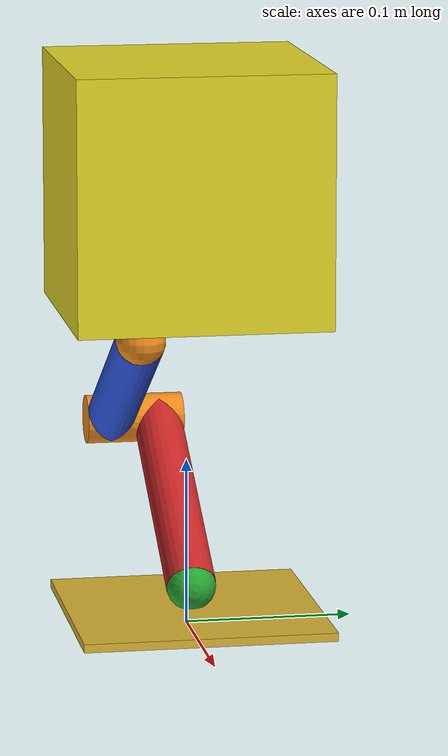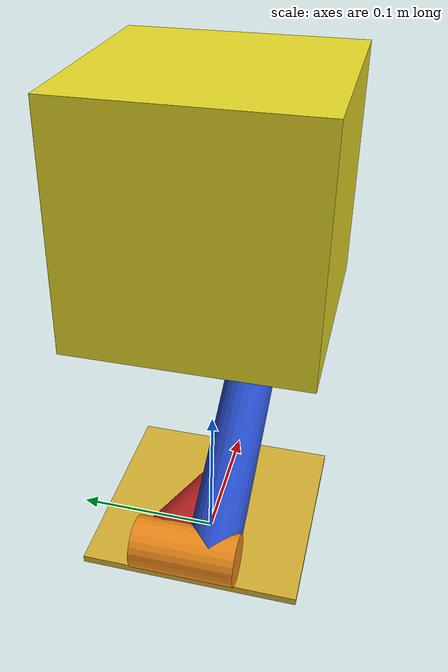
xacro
<?xml version="1.0"?>
<!--full-->
<robot name="my_robot" xmlns:xacro="http://ros.org/wiki/xacro">

  <xacro:property name="pi" value="3.1415926535897931" />
  <xacro:property name="theta1" value="30" />

  <link name="base_link">
    <inertial>
      <mass value="5"/>
      <origin xyz="0 0 ${0.3*sin(radians(theta1))+0.115}" rpy="0 0 0"/>
      <inertia ixx="1.0" ixy="0.0" ixz="0.0" iyy="1.0" iyz="0.0" izz="1.0"/>
    </inertial>
    <visual>
      <origin xyz="0 0 ${0.3*sin(radians(theta1))+0.115}" rpy="0 0 0"/>
      <geometry>
        <box size="0.15 0.15 0.15"/>
      </geometry>
    </visual>
    <collision>
      <origin xyz="0 0 ${0.3*sin(radians(theta1))+0.115}" rpy="0 0 0"/>
      <geometry>
        <box size="0.15 0.15 0.15"/>
      </geometry>
    </collision>
  </link>
  <gazebo reference="base_link">
    <selfCollide>true</selfCollide>
    <material>Gazebo/Yellow</material>
  </gazebo>

  <joint name="arm2_joint_link_joint" type="fixed">
    <parent link="base_link"/>
    <child link="arm2_joint_link"/>
  </joint>

  <link name="arm2_joint_link">
    <inertial>
      <mass value="0.05"/>
      <origin xyz="0.01 -0.0289 ${0.3*sin(radians(theta1))+0.025}" rpy="0 0 0"/>
      <inertia ixx="0.01" ixy="0.0" ixz="0.0" iyy="0.01" iyz="0.0" izz="0.01"/>
    </inertial>
    <visual>
      <origin xyz="0.01 -0.0289 ${0.3*sin(radians(theta1))+0.025}" rpy="0 0 0"/>
      <geometry>
        <sphere radius="0.015"/>
      </geometry>
    </visual>
    <collision>
      <origin xyz="0.01 -0.0289 ${0.3*sin(radians(theta1))+0.025}" rpy="0 0 0"/>
      <geometry>
        <sphere radius="0.015"/>
      </geometry>
    </collision>
  </link>
  <gazebo reference="arm2_joint_link">
    <material>Gazebo/Orange</material>
  </gazebo>

 <joint name="arm2_joint" type="revolute">
    <parent link="arm2_joint_link"/>
    <child link="arm2_link"/>
    <limit upper="0.0" lower="${-30*pi/180}" effort="100" velocity="100"/>
    <axis xyz="0 1 0"/>
    <origin xyz="0.01 -0.0289 ${0.3*sin(radians(theta1))+0.025}" rpy="0 ${-90*pi/180} 0"/>
    <dynamics damping="0.1"/>
  </joint>
  <transmission name="arm2_trans">
    <type>transmission_interface/SimpleTransmission</type>
    <joint name="arm2_joint">
      <hardwareInterface>hardware_interface/EffortJointInterface</hardwareInterface>
    </joint>
    <actuator name="arm2_motor">
       <hardwareInterface>hardware_interface/EffortJointInterface</hardwareInterface>
       <mechanismReduction>1</mechanismReduction>
    </actuator>
  </transmission>
  <gazebo reference="arm2_joint">
    <provideFeedback>true</provideFeedback>
    <turnGravityOff>false</turnGravityOff>
  </gazebo>

  <link name="arm2_link">
    <inertial>
      <mass value="0.2"/>
      <origin xyz="-${0.15*0.5*sin(radians(theta1))} 0 ${0.15*0.5*cos(radians(theta1))}" rpy="0 -${theta1*pi/180} 0"/>
      <inertia ixx="0.01" ixy="0.0" ixz="0.0" iyy="0.01" iyz="0.0" izz="0.01"/>
    </inertial>
    <visual>
      <origin xyz="-${0.15*0.5*sin(radians(theta1))} 0 ${0.15*0.5*cos(radians(theta1))}" rpy="0 -${theta1*pi/180} 0"/>
      <geometry>
        <cylinder length="0.15" radius="0.015"/>
      </geometry>
    </visual>
    <collision>
      <origin xyz="-${0.15*0.5*sin(radians(theta1))} 0 ${0.15*0.5*cos(radians(theta1))}" rpy="0 -${theta1*pi/180} 0"/>
      <geometry>
        <cylinder length="0.15" radius="0.015"/>
      </geometry>
    </collision>
  </link>
  <gazebo reference="arm2_link">
    <material>Gazebo/Blue</material>
  </gazebo>

  <joint name="arm1_joint" type="revolute">
    <parent link="arm2_link"/>
    <child link="arm1_joint_link"/>
    <limit upper="${60*pi/180}" lower="0.0" effort="100" velocity="100"/>
    <axis xyz="0 1 0"/>
    <origin xyz="-${0.15*sin(radians(theta1))} 0.03 ${0.15*cos(radians(theta1))}" rpy="0 0 0"/>
    <dynamics damping="0.1"/>
  </joint>
  <transmission name="arm1_trans">
    <type>transmission_interface/SimpleTransmission</type>
    <joint name="arm1_joint">
      <hardwareInterface>hardware_interface/EffortJointInterface</hardwareInterface>
    </joint>
    <actuator name="arm1_motor">
       <hardwareInterface>hardware_interface/EffortJointInterface</hardwareInterface>
       <mechanismReduction>1</mechanismReduction>
    </actuator>
  </transmission>
  <gazebo reference="arm1_joint">
    <provideFeedback>true</provideFeedback>
    <turnGravityOff>false</turnGravityOff>
  </gazebo>

  <link name="arm1_joint_link">
    <inertial>
      <origin xyz="0 -0.015 0" rpy="${90*pi/180} 0 0"/>
      <mass value="0.05"/>
      <inertia ixx="0.01" ixy="0.0" ixz="0.0" iyy="0.01" iyz="0.0" izz="0.01"/>
    </inertial>
    <visual>
      <origin xyz="0 -0.015 0" rpy="${90*pi/180} 0 0"/>
      <geometry>
        <cylinder length="0.06" radius="0.015"/>
      </geometry>
    </visual>
    <collision>
      <origin xyz="0 -0.015 0" rpy="${90*pi/180} 0 0 "/>
      <geometry>
        <cylinder length="0.06" radius="0.015"/>
      </geometry>
    </collision>
  </link>
  <gazebo reference="arm1_joint_link">
    <material>Gazebo/Orange</material>
  </gazebo>

  <joint name="arm1_joint_link_joint" type="fixed">
    <parent link="arm1_joint_link"/>
    <child link="arm1_link"/>
  </joint>

  <link name="arm1_link">
    <inertial>
      <origin xyz="-${0.15*0.5*sin(radians(theta1))} 0 -${0.15*0.5*cos(radians(theta1))}" rpy="0 ${theta1*pi/180} 0"/>
      <mass value="0.2"/>
      <inertia ixx="0.01" ixy="0.0" ixz="0.0" iyy="0.01" iyz="0.0" izz="0.01"/>
    </inertial>
    <visual>
      <origin xyz="-${0.15*0.5*sin(radians(theta1))} 0 -${0.15*0.5*cos(radians(theta1))}" rpy="0 ${theta1*pi/180} 0"/>
      <geometry>
        <cylinder length="0.15" radius="0.015"/>
      </geometry>
    </visual>
    <collision>
      <origin xyz="-${0.15*0.5*sin(radians(theta1))} 0 -${0.15*0.5*cos(radians(theta1))}" rpy="0 ${theta1*pi/180} 0"/>
      <geometry>
        <cylinder length="0.15" radius="0.015"/>
      </geometry>
    </collision>
  </link>
  <gazebo reference="arm1_link">
    <material>Gazebo/Red</material>
  </gazebo>

   <joint name="arm0_joint" type="fixed">
    <parent link="arm1_link"/>
    <child link="arm0_link"/>
  </joint>

  <link name="arm0_link">
    <inertial>
      <mass value="0.05"/>
      <origin xyz="-${0.15*sin(radians(theta1))} 0 -${0.15*cos(radians(theta1))}" rpy="0 0 0"/>
      <inertia ixx="0.01" ixy="0.0" ixz="0.0" iyy="0.01" iyz="0.0" izz="0.01"/>
    </inertial>
    <visual>
      <origin xyz="-${0.15*sin(radians(theta1))} 0 -${0.15*cos(radians(theta1))}" rpy="0 0 0"/>
      <geometry>
        <sphere radius="0.015"/>
      </geometry>
    </visual>
    <collision>
      <origin xyz="-${0.15*sin(radians(theta1))} 0 -${0.15*cos(radians(theta1))}" rpy="0 0 0"/>
      <geometry>
        <sphere radius="0.015"/>
      </geometry>
    </collision>
  </link>
  <gazebo reference="arm0_link">
    <selfCollide>true</selfCollide>
    <material>Gazebo/Green</material>
  </gazebo>

  <joint name="foot_joint" type="fixed">
    <parent link="arm0_link"/>
    <child link="foot_link"/>
  </joint>

  <link name="foot_link">
    <inertial>
      <mass value="0.05"/>
      <origin xyz="-${0.15*sin(radians(theta1))+0.015} 0 -${0.15*cos(radians(theta1))}" rpy="0 0 0"/>
      <inertia ixx="0.01" ixy="0.0" ixz="0.0" iyy="0.01" iyz="0.0" izz="0.01"/>
    </inertial>
    <visual>
      <origin xyz="-${0.15*sin(radians(theta1))+0.015} 0 -${0.15*cos(radians(theta1))}" rpy="0 0 0"/>
      <geometry>
        <box size="0.005 0.15 0.15"/>
      </geometry>
    </visual>
    <collision>
      <origin xyz="-${0.15*sin(radians(theta1))+0.015} 0 -${0.15*cos(radians(theta1))}" rpy="0 0 0"/>
      <geometry>
        <box size="0.005 0.15 0.15"/>
      </geometry>
    </collision>
  </link>
  <gazebo reference="foot_link">
    <mu1>1</mu1>
    <mu2>1</mu2>
    <selfCollide>true</selfCollide>
    <material>Gazebo/Gold</material>
  </gazebo>

  <gazebo>
    <plugin name="ft_sensor" filename="libgazebo_ros_ft_sensor.so">
      <updateRate>100.0</updateRate>
      <topicName>arm1_sensor/raw</topicName>
      <jointName>arm1_joint</jointName>
      <gaussianNoise>0.0</gaussianNoise>
    </plugin>
    <plugin name="ft_sensor" filename="libgazebo_ros_ft_sensor.so">
      <updateRate>100.0</updateRate>
      <topicName>arm2_sensor/raw</topicName>
      <jointName>arm2_joint</jointName>
      <gaussianNoise>0.0</gaussianNoise>
    </plugin>
    <plugin name="gazebo_ros_control" filename="libgazebo_ros_control.so">
      <robotNamespace>/my_robot</robotNamespace>
      <robotSimType>gazebo_ros_control/DefaultRobotHWSim</robotSimType>
    </plugin>
  </gazebo>

</robot>
